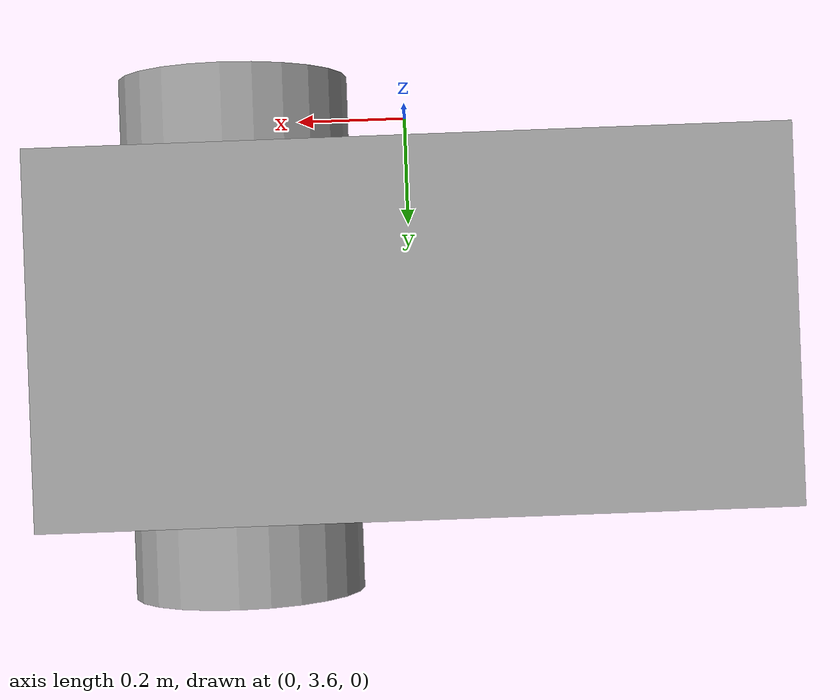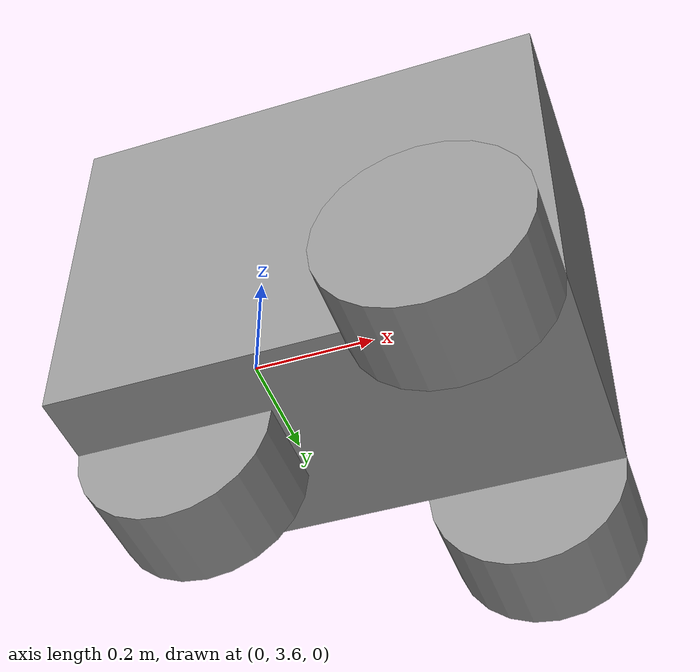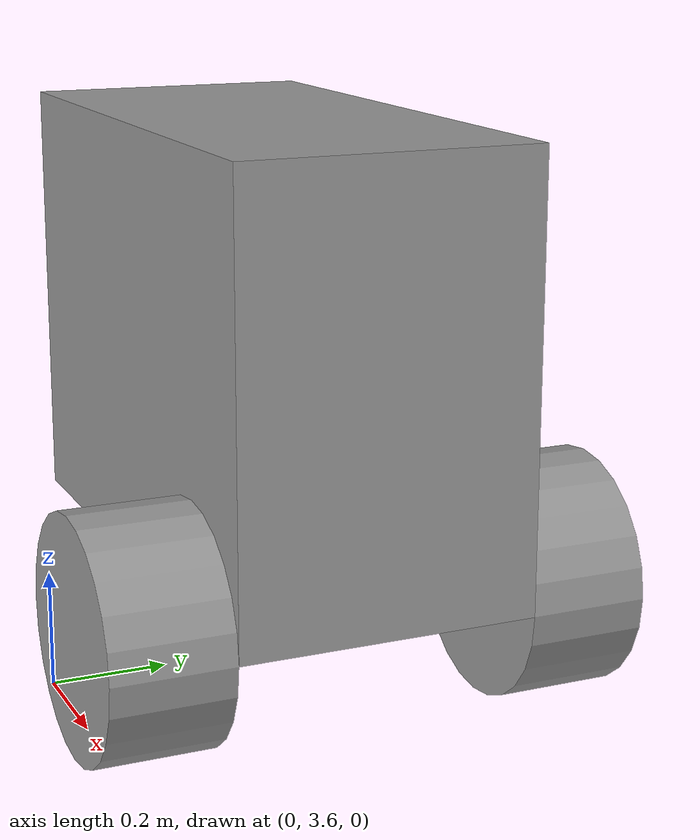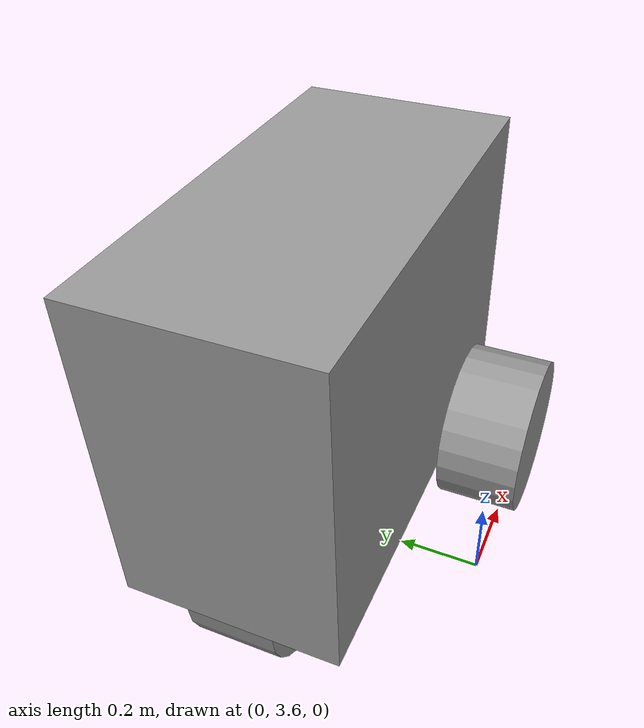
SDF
<?xml version='1.0'?>
<sdf version='1.6'>
  <model name='Triaxle'>
    <link name='front_wheel'>
      <pose frame=''>-0.3 4 0.2 1.5708 -0 0</pose>
      <inertial>
        <mass>1</mass>
        <inertia>
          <ixx>0.145833</ixx>
          <ixy>0</ixy>
          <ixz>0</ixz>
          <iyy>0.145833</iyy>
          <iyz>0</iyz>
          <izz>0.125</izz>
        </inertia>
        <pose frame=''>0 0 0 1.5708 -0 0</pose>
      </inertial>
      <self_collide>0</self_collide>
      <kinematic>0</kinematic>
      <gravity>1</gravity>
      <visual name='visual'>
        <pose frame=''>0 0 0 0 -0 1.5708</pose>
        <geometry>
          <cylinder>
            <radius>0.2</radius>
            <length>0.2</length>
          </cylinder>
        </geometry>
        <material>
          <lighting>1</lighting>
          <script>
            <uri>file://media/materials/scripts/gazebo.material</uri>
            <name>Gazebo/Grey</name>
          </script>
          <shader type='pixel'>
            <normal_map>__default__</normal_map>
          </shader>
          <ambient>0.3 0.3 0.3 1</ambient>
          <diffuse>0.7 0.7 0.7 1</diffuse>
          <specular>0.01 0.01 0.01 1</specular>
          <emissive>0 0 0 1</emissive>
        </material>
        <transparency>0</transparency>
        <cast_shadows>1</cast_shadows>
      </visual>
      <collision name='collision'>
        <laser_retro>0</laser_retro>
        <max_contacts>10</max_contacts>
        <pose frame=''>0 0 0 0 -0 0</pose>
        <geometry>
          <cylinder>
            <radius>0.2</radius>
            <length>0.2</length>
          </cylinder>
        </geometry>
        <surface>
          <friction>
            <ode>
              <mu>1</mu>
              <mu2>1</mu2>
              <fdir1>0 0 0</fdir1>
              <slip1>0</slip1>
              <slip2>0</slip2>
            </ode>
            <torsional>
              <coefficient>1</coefficient>
              <patch_radius>0</patch_radius>
              <surface_radius>0</surface_radius>
              <use_patch_radius>1</use_patch_radius>
              <ode>
                <slip>0</slip>
              </ode>
            </torsional>
          </friction>
          <bounce>
            <restitution_coefficient>0</restitution_coefficient>
            <threshold>1e+06</threshold>
          </bounce>
          <contact>
            <collide_without_contact>0</collide_without_contact>
            <collide_without_contact_bitmask>1</collide_without_contact_bitmask>
            <collide_bitmask>1</collide_bitmask>
            <ode>
              <soft_cfm>0</soft_cfm>
              <soft_erp>0.2</soft_erp>
              <kp>1e+13</kp>
              <kd>1</kd>
              <max_vel>0.01</max_vel>
              <min_depth>0</min_depth>
            </ode>
            <bullet>
              <split_impulse>1</split_impulse>
              <split_impulse_penetration_threshold>-0.01</split_impulse_penetration_threshold>
              <soft_cfm>0</soft_cfm>
              <soft_erp>0.2</soft_erp>
              <kp>1e+13</kp>
              <kd>1</kd>
            </bullet>
          </contact>
        </surface>
      </collision>
    </link>
    <link name='body'>
      <pose frame=''>0 4 0.575 0 -0 0</pose>
      <inertial>
        <mass>1</mass>
        <inertia>
          <ixx>0.166667</ixx>
          <ixy>0</ixy>
          <ixz>0</ixz>
          <iyy>0.166667</iyy>
          <iyz>0</iyz>
          <izz>0.166667</izz>
        </inertia>
        <pose frame=''>0 0 0 0 -0 0</pose>
      </inertial>
      <self_collide>0</self_collide>
      <kinematic>0</kinematic>
      <gravity>1</gravity>
      <visual name='visual'>
        <pose frame=''>0 0 0 0 -0 0</pose>
        <geometry>
          <box>
            <size>1 0.5 0.75</size>
          </box>
        </geometry>
        <material>
          <lighting>1</lighting>
          <script>
            <uri>file://media/materials/scripts/gazebo.material</uri>
            <name>Gazebo/Grey</name>
          </script>
          <shader type='pixel'>
            <normal_map>__default__</normal_map>
          </shader>
          <ambient>0.3 0.3 0.3 1</ambient>
          <diffuse>0.7 0.7 0.7 1</diffuse>
          <specular>0.01 0.01 0.01 1</specular>
          <emissive>0 0 0 1</emissive>
        </material>
        <transparency>0</transparency>
        <cast_shadows>1</cast_shadows>
      </visual>
      <collision name='collision'>
        <laser_retro>0</laser_retro>
        <max_contacts>10</max_contacts>
        <pose frame=''>0 0 0 0 -0 0</pose>
        <geometry>
          <box>
            <size>1 0.5 0.75</size>
          </box>
        </geometry>
        <surface>
          <friction>
            <ode>
              <mu>1</mu>
              <mu2>1</mu2>
              <fdir1>0 0 0</fdir1>
              <slip1>0</slip1>
              <slip2>0</slip2>
            </ode>
            <torsional>
              <coefficient>1</coefficient>
              <patch_radius>0</patch_radius>
              <surface_radius>0</surface_radius>
              <use_patch_radius>1</use_patch_radius>
              <ode>
                <slip>0</slip>
              </ode>
            </torsional>
          </friction>
          <bounce>
            <restitution_coefficient>0</restitution_coefficient>
            <threshold>1e+06</threshold>
          </bounce>
          <contact>
            <collide_without_contact>0</collide_without_contact>
            <collide_without_contact_bitmask>1</collide_without_contact_bitmask>
            <collide_bitmask>1</collide_bitmask>
            <ode>
              <soft_cfm>0</soft_cfm>
              <soft_erp>0.2</soft_erp>
              <kp>1e+13</kp>
              <kd>1</kd>
              <max_vel>0.01</max_vel>
              <min_depth>0</min_depth>
            </ode>
            <bullet>
              <split_impulse>1</split_impulse>
              <split_impulse_penetration_threshold>-0.01</split_impulse_penetration_threshold>
              <soft_cfm>0</soft_cfm>
              <soft_erp>0.2</soft_erp>
              <kp>1e+13</kp>
              <kd>1</kd>
            </bullet>
          </contact>
        </surface>
      </collision>
    </link>
    <link name='left_wheel'>
      <pose frame=''>0.3 4.35 0.2 1.5708 -0 0</pose>
      <inertial>
        <mass>1</mass>
        <inertia>
          <ixx>0.145833</ixx>
          <ixy>0</ixy>
          <ixz>0</ixz>
          <iyy>0.145833</iyy>
          <iyz>0</iyz>
          <izz>0.125</izz>
        </inertia>
        <pose frame=''>0 0 0 1.5708 -0 0</pose>
      </inertial>
      <self_collide>0</self_collide>
      <kinematic>0</kinematic>
      <gravity>1</gravity>
      <visual name='visual'>
        <pose frame=''>0 0 0 0 -0 1.5708</pose>
        <geometry>
          <cylinder>
            <radius>0.2</radius>
            <length>0.2</length>
          </cylinder>
        </geometry>
        <material>
          <lighting>1</lighting>
          <script>
            <uri>file://media/materials/scripts/gazebo.material</uri>
            <name>Gazebo/Grey</name>
          </script>
          <shader type='pixel'>
            <normal_map>__default__</normal_map>
          </shader>
          <ambient>0.3 0.3 0.3 1</ambient>
          <diffuse>0.7 0.7 0.7 1</diffuse>
          <specular>0.01 0.01 0.01 1</specular>
          <emissive>0 0 0 1</emissive>
        </material>
        <transparency>0</transparency>
        <cast_shadows>1</cast_shadows>
      </visual>
      <collision name='collision'>
        <laser_retro>0</laser_retro>
        <max_contacts>10</max_contacts>
        <pose frame=''>0 0 0 0 -0 0</pose>
        <geometry>
          <cylinder>
            <radius>0.2</radius>
            <length>0.2</length>
          </cylinder>
        </geometry>
        <surface>
          <friction>
            <ode>
              <mu>1</mu>
              <mu2>1</mu2>
              <fdir1>0 0 0</fdir1>
              <slip1>0</slip1>
              <slip2>0</slip2>
            </ode>
            <torsional>
              <coefficient>1</coefficient>
              <patch_radius>0</patch_radius>
              <surface_radius>0</surface_radius>
              <use_patch_radius>1</use_patch_radius>
              <ode>
                <slip>0</slip>
              </ode>
            </torsional>
          </friction>
          <bounce>
            <restitution_coefficient>0</restitution_coefficient>
            <threshold>1e+06</threshold>
          </bounce>
          <contact>
            <collide_without_contact>0</collide_without_contact>
            <collide_without_contact_bitmask>1</collide_without_contact_bitmask>
            <collide_bitmask>1</collide_bitmask>
            <ode>
              <soft_cfm>0</soft_cfm>
              <soft_erp>0.2</soft_erp>
              <kp>1e+13</kp>
              <kd>1</kd>
              <max_vel>0.01</max_vel>
              <min_depth>0</min_depth>
            </ode>
            <bullet>
              <split_impulse>1</split_impulse>
              <split_impulse_penetration_threshold>-0.01</split_impulse_penetration_threshold>
              <soft_cfm>0</soft_cfm>
              <soft_erp>0.2</soft_erp>
              <kp>1e+13</kp>
              <kd>1</kd>
            </bullet>
          </contact>
        </surface>
      </collision>
    </link>
    <link name='right_wheel'>
      <pose frame=''>0.3 3.65 0.2 1.5708 -0 0</pose>
      <inertial>
        <mass>1</mass>
        <inertia>
          <ixx>0.145833</ixx>
          <ixy>0</ixy>
          <ixz>0</ixz>
          <iyy>0.145833</iyy>
          <iyz>0</iyz>
          <izz>0.125</izz>
        </inertia>
        <pose frame=''>0 0 0 1.5708 -0 0</pose>
      </inertial>
      <self_collide>0</self_collide>
      <kinematic>0</kinematic>
      <gravity>1</gravity>
      <visual name='visual'>
        <pose frame=''>0 0 0 0 -0 1.5708</pose>
        <geometry>
          <cylinder>
            <radius>0.2</radius>
            <length>0.2</length>
          </cylinder>
        </geometry>
        <material>
          <lighting>1</lighting>
          <script>
            <uri>file://media/materials/scripts/gazebo.material</uri>
            <name>Gazebo/Grey</name>
          </script>
          <shader type='pixel'>
            <normal_map>__default__</normal_map>
          </shader>
          <ambient>0.3 0.3 0.3 1</ambient>
          <diffuse>0.7 0.7 0.7 1</diffuse>
          <specular>0.01 0.01 0.01 1</specular>
          <emissive>0 0 0 1</emissive>
        </material>
        <transparency>0</transparency>
        <cast_shadows>1</cast_shadows>
      </visual>
      <collision name='collision'>
        <laser_retro>0</laser_retro>
        <max_contacts>10</max_contacts>
        <pose frame=''>0 0 0 0 -0 0</pose>
        <geometry>
          <cylinder>
            <radius>0.2</radius>
            <length>0.2</length>
          </cylinder>
        </geometry>
        <surface>
          <friction>
            <ode>
              <mu>1</mu>
              <mu2>1</mu2>
              <fdir1>0 0 0</fdir1>
              <slip1>0</slip1>
              <slip2>0</slip2>
            </ode>
            <torsional>
              <coefficient>1</coefficient>
              <patch_radius>0</patch_radius>
              <surface_radius>0</surface_radius>
              <use_patch_radius>1</use_patch_radius>
              <ode>
                <slip>0</slip>
              </ode>
            </torsional>
          </friction>
          <bounce>
            <restitution_coefficient>0</restitution_coefficient>
            <threshold>1e+06</threshold>
          </bounce>
          <contact>
            <collide_without_contact>0</collide_without_contact>
            <collide_without_contact_bitmask>1</collide_without_contact_bitmask>
            <collide_bitmask>1</collide_bitmask>
            <ode>
              <soft_cfm>0</soft_cfm>
              <soft_erp>0.2</soft_erp>
              <kp>1e+13</kp>
              <kd>1</kd>
              <max_vel>0.01</max_vel>
              <min_depth>0</min_depth>
            </ode>
            <bullet>
              <split_impulse>1</split_impulse>
              <split_impulse_penetration_threshold>-0.01</split_impulse_penetration_threshold>
              <soft_cfm>0</soft_cfm>
              <soft_erp>0.2</soft_erp>
              <kp>1e+13</kp>
              <kd>1</kd>
            </bullet>
          </contact>
        </surface>
      </collision>
    </link>
    <joint name='front_wheel_joint' type='revolute'>
      <parent>body</parent>
      <child>front_wheel</child>
      <pose frame=''>0 0 0 0 -0 0</pose>
      <axis>
        <xyz>0 0 1</xyz>
        <use_parent_model_frame>0</use_parent_model_frame>
        <limit>
          <lower>-1.79769e+308</lower>
          <upper>1.79769e+308</upper>
          <effort>-1</effort>
          <velocity>-1</velocity>
        </limit>
        <dynamics>
          <spring_reference>0</spring_reference>
          <spring_stiffness>0</spring_stiffness>
          <damping>0</damping>
          <friction>0</friction>
        </dynamics>
      </axis>
      <physics>
        <ode>
          <limit>
            <cfm>0</cfm>
            <erp>0.2</erp>
          </limit>
          <suspension>
            <cfm>0</cfm>
            <erp>0.2</erp>
          </suspension>
        </ode>
      </physics>
    </joint>
    <joint name='left_wheel_joint' type='revolute'>
      <parent>body</parent>
      <child>left_wheel</child>
      <pose frame=''>0 0 0 0 -0 0</pose>
      <axis>
        <xyz>0 0 1</xyz>
        <use_parent_model_frame>0</use_parent_model_frame>
        <limit>
          <lower>-1.79769e+308</lower>
          <upper>1.79769e+308</upper>
          <effort>-1</effort>
          <velocity>-1</velocity>
        </limit>
        <dynamics>
          <spring_reference>0</spring_reference>
          <spring_stiffness>0</spring_stiffness>
          <damping>0</damping>
          <friction>0</friction>
        </dynamics>
      </axis>
      <physics>
        <ode>
          <limit>
            <cfm>0</cfm>
            <erp>0.2</erp>
          </limit>
          <suspension>
            <cfm>0</cfm>
            <erp>0.2</erp>
          </suspension>
        </ode>
      </physics>
    </joint>
    <joint name='right_wheel_joint' type='revolute'>
      <parent>body</parent>
      <child>right_wheel</child>
      <pose frame=''>0 0 0 0 -0 0</pose>
      <axis>
        <xyz>0 0 1</xyz>
        <use_parent_model_frame>0</use_parent_model_frame>
        <limit>
          <lower>-1.79769e+308</lower>
          <upper>1.79769e+308</upper>
          <effort>-1</effort>
          <velocity>-1</velocity>
        </limit>
        <dynamics>
          <spring_reference>0</spring_reference>
          <spring_stiffness>0</spring_stiffness>
          <damping>0</damping>
          <friction>0</friction>
        </dynamics>
      </axis>
      <physics>
        <ode>
          <limit>
            <cfm>0</cfm>
            <erp>0.2</erp>
          </limit>
          <suspension>
            <cfm>0</cfm>
            <erp>0.2</erp>
          </suspension>
        </ode>
      </physics>
    </joint>
    <static>0</static>
    <allow_auto_disable>1</allow_auto_disable>
  </model>
</sdf>
